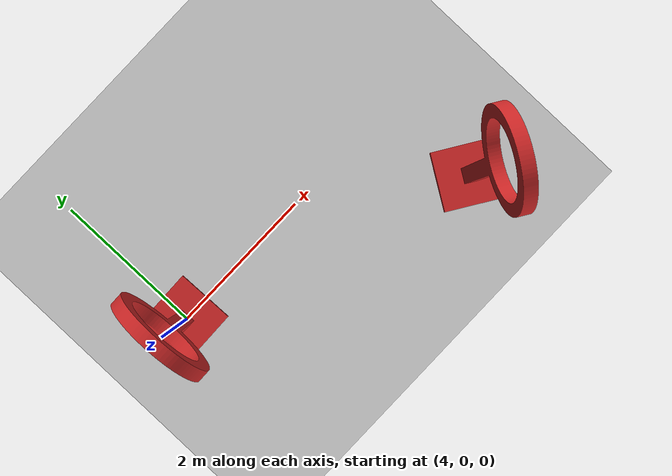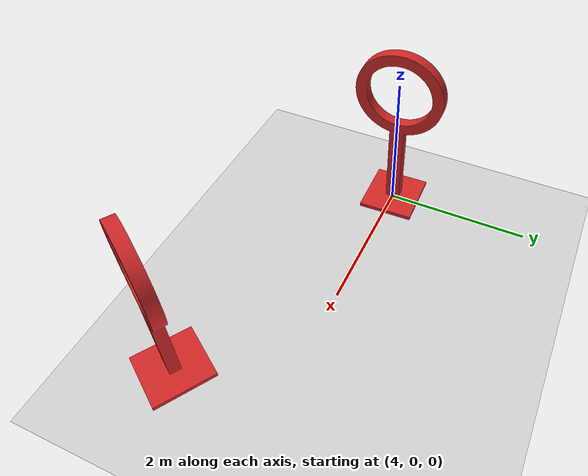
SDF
<sdf version="1.6">
 <world name="default">
  <light name="sun" type="directional">
   <pose>0 0 10 0 -0 0</pose>
   <diffuse>0.8 0.8 0.8 1</diffuse>
   <specular>0.2 0.2 0.2 1</specular>
   <attenuation>
    <range>1000</range>
    <constant>0.9</constant>
    <linear>0.01</linear>
    <quadratic>0.001</quadratic>
   </attenuation>
   <direction>-0.5 0.1 -0.9</direction>
  </light>
  <model name="ground_plane">
   <static>1</static>
   <link name="link">
    <collision name="collision">
     <geometry><plane><normal>0 0 1</normal><size>100 100</size></plane></geometry>
     <surface><friction><ode><mu>100</mu><mu2>50</mu2></ode></friction></surface>
    </collision>
    <visual name="visual">
     <cast_shadows>0</cast_shadows>
     <geometry><plane><normal>0 0 1</normal><size>100 100</size></plane></geometry>
     <material>
      <script><uri>file://media/materials/scripts/gazebo.material</uri><name>Gazebo/Grey</name></script>
     </material>
    </visual>
   </link>
  </model>
  <gravity>0 0 -9.8</gravity>
  <magnetic_field>6e-06 2.3e-05 -4.2e-05</magnetic_field>
  <atmosphere type="adiabatic"/>
  <physics name="default_physics" default="0" type="ode">
   <max_step_size>0.001</max_step_size>
   <real_time_factor>1</real_time_factor>
   <real_time_update_rate>1000</real_time_update_rate>
  </physics>
  <scene><ambient>0.4 0.4 0.4 1</ambient><background>0.7 0.7 0.7 1</background><shadows>1</shadows></scene>
  <spherical_coordinates>
   <surface_model>EARTH_WGS84</surface_model>
   <latitude_deg>0</latitude_deg>
   <longitude_deg>0</longitude_deg>
   <elevation>0</elevation>
   <heading_deg>0</heading_deg>
  </spherical_coordinates>
  <model name="circle_gate_c">
   <static>1</static>
   <link name="link">
    <inertial>
     <mass>10</mass>
     <inertia><ixx>10</ixx><ixy>0</ixy><ixz>0</ixz><iyy>10</iyy><iyz>0</iyz><izz>10</izz></inertia>
    </inertial>
    <collision name="collision">
     <geometry><mesh><uri>model://circle_gate_c/meshes/circle_gate_c.stl</uri></mesh></geometry>
    </collision>
    <visual name="visual">
     <geometry>
      <mesh><uri>model://circle_gate_c/meshes/circle_gate_c.stl</uri><scale>0.001 0.001 0.001</scale></mesh>
     </geometry>
     <material>
      <script><uri>file://media/materials/scripts/gazebo.material</uri><name>Gazebo/Red</name></script>
     </material>
    </visual>
   </link>
   <pose>4.0004 -0.736025 0 0 -0 1.59687</pose>
  </model>
  <model name="circle_gate_c_0">
   <static>1</static>
   <link name="link">
    <inertial>
     <mass>10</mass>
     <inertia><ixx>10</ixx><ixy>0</ixy><ixz>0</ixz><iyy>10</iyy><iyz>0</iyz><izz>10</izz></inertia>
    </inertial>
    <collision name="collision">
     <geometry><mesh><uri>model://circle_gate_c/meshes/circle_gate_c.stl</uri></mesh></geometry>
    </collision>
    <visual name="visual">
     <geometry>
      <mesh><uri>model://circle_gate_c/meshes/circle_gate_c.stl</uri><scale>0.001 0.001 0.001</scale></mesh>
     </geometry>
     <material>
      <script><uri>file://media/materials/scripts/gazebo.material</uri><name>Gazebo/Red</name></script>
     </material>
    </visual>
   </link>
   <pose>7.34753 -1.96211 0 0 -0 1</pose>
  </model>
 </world>
</sdf>
